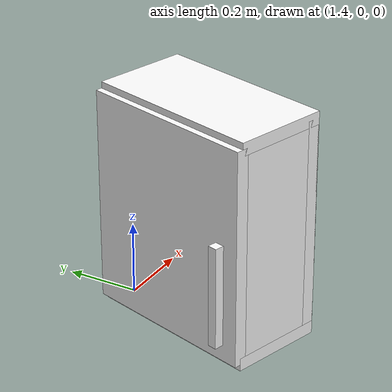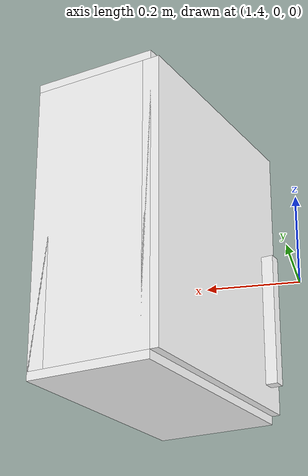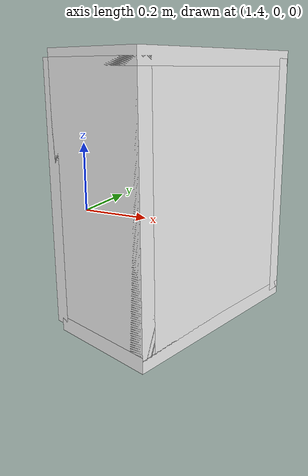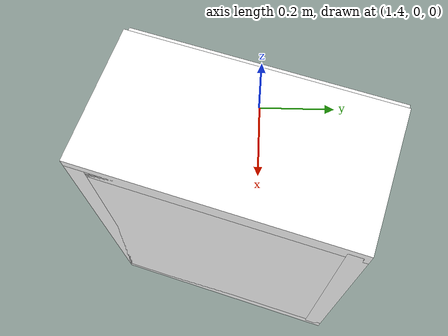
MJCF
<mujoco model="cabinet">
    <compiler angle="radian" eulerseq='zxy' />
    <option gravity = "0 0 0" />
    <option>
        <flag contact = "disable"/>
    </option>
    <statistic	extent="1.0" center="0.0 0.0 0.0"/>
    <visual>
        <map fogstart="3" fogend="5" force="0.1" znear=" 0.100000 " zfar=" 12.000000 "/>
    </visual>
    <size njmax="500" nconmax="100" />
    <actuator>
        <velocity joint="bottom_left_hinge" name="viva_revolution" kv='10'></velocity>
    </actuator>
    <asset>
        <texture builtin="flat" name="tabletex" height="32" width="32" rgb1="1 1 1" type="cube"></texture>
        <texture builtin="flat" name="objtex" height="32" width="32" rgb1="1 1 1" type="cube"></texture>
        <texture builtin="flat" name="handletex" height="32" width="32" rgb1="1 1 1" type="cube"></texture>
        <texture builtin="flat" name="wallpaper" height="32" width="32" rgb1="1 1 1" type="cube"></texture>
        <material name="geomTable" shininess="0.03" specular="0.75" texture="tabletex"></material>
        <material name="geomObj" shininess="0.03" specular="0.75" texture="objtex"></material>
        <material name="geomHandle" shininess="0.03" specular="0.75" texture="handletex"></material>
        <material name="bg" shininess="0.03" specular="0.75" texture="wallpaper"></material>
    </asset>
    <worldbody>
            <body name="cabinet_bottom" pos= " 1.722042 -0.043588 -0.213380 "  quat= " 0.142119 0.000000 0.000000 0.989850" >
                <inertial pos="0 0 0" mass="1" diaginertia="1 1 1" />
                <geom size= " 0.143098 0.273507 0.019544 "  type="box" material="geomObj" name="b"/>
                <body name="cabinet_left" pos= " 0.000000 -0.253963 0.323987 " >
                    <inertial pos="0 0 0" mass="1" diaginertia="1 1 1" />
                    <geom size= " 0.143098 0.019544 0.323987 "  type="box" material="geomObj" name="c" />
                </body>
                <body name="cabinet_right" pos= " 0.000000 0.253963 0.323987 " >
                    <inertial pos="0 0 0" mass="1" diaginertia="1 1 1" />
                    <geom size= " 0.143098 0.019544 0.323987 "  type="box" material="geomObj" name="d" />
                </body>
                <body name="cabinet_top" pos= " 0.000000 0.000000 0.647974 " >
                    <inertial pos="0 0 0" mass="1" diaginertia="1 1 1" />
                    <geom size= " 0.143098 0.273507 0.019544 "  type="box" material="geomObj" name="e"/>
                </body>
                <body name="cabinet_back" pos= " -0.123554 0.000000 0.323987 "  >
                    <inertial pos="0 0 0" mass="1" diaginertia="1 1 1" />
                    <geom size= " 0.019544 0.273507 0.323987 "  type="box" material="geomObj" name="f" />
                </body>
                <body name="cabinet_left_hinge" pos= " 0.143098 -0.273507 0.323987 " >
                    <inertial pos= " 0.000000 0.273507 0.000000 "  mass="1" diaginertia="1 1 1" />
                    <joint name="bottom_left_hinge" type="hinge" pos="0 0 0" axis="0 0 1" limited="true" range= "-2.3 0"  />
                    <geom size= " 0.019544 0.273507 0.323987 "  pos= " 0.000000 0.273507 0.000000 "  type="box" material="geomObj" name="g"/>
                    <body name="handle_link" pos= " 0.035775 0.486831 -0.117989 " >
                        <inertial pos="0 0 0" mass="1" diaginertia="1 1 1" />
                        <geom size= " 0.014007 0.014062 0.154038 "  type="box" material="geomHandle" name="h"/>
                    </body>
                </body>
            </body>
        <body name="external_camera_body_0" pos="0.0 0 0.00">
            <camera euler="-1.57 1.57 0.0" fovy=" 54.280851 " name="external_camera_0" pos="0.0 0 0"></camera>
            <inertial pos= " 0.00 0.0 0.000000 " mass="1" diaginertia="1 1 1" />
            <joint name="cam_j" pos="0.0 0 0" axis = "1 0 0" type="free" />
        </body>
    </worldbody>
</mujoco>
